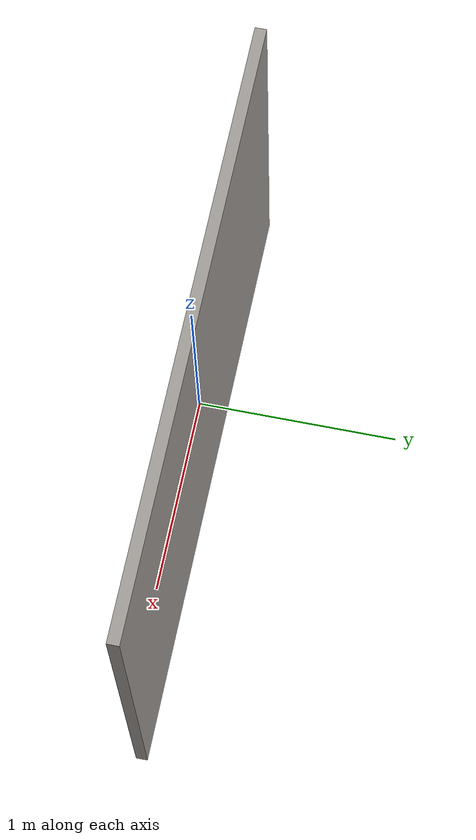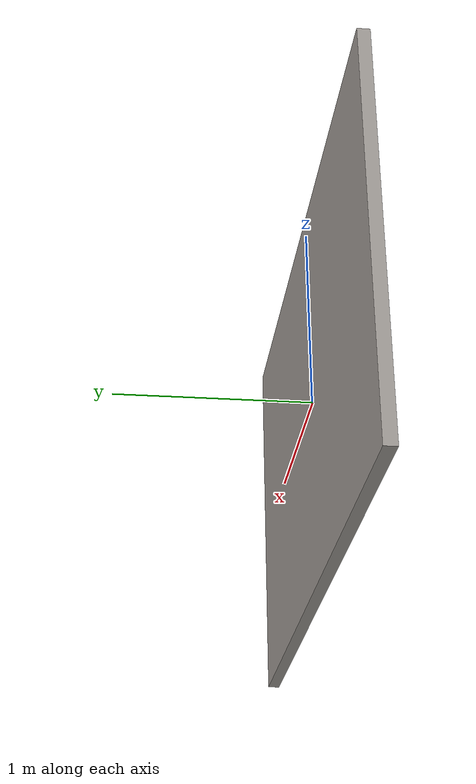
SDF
<?xml version="1.0"?>
<sdf version="1.6">
  <model name="clinic_screen_closed">
    <static>true</static>
    <link name="link">
      <collision name="col">
        <geometry>
          <box>
            <size>3.2 0.06 2.0</size>
          </box>
        </geometry>
      </collision>
      <visual name="vis">
        <geometry>
          <box>
            <size>3.2 0.06 2.0</size>
          </box>
        </geometry>
        <material>
          <ambient>0.62 0.6 0.58 1</ambient>
          <diffuse>0.62 0.6 0.58 1</diffuse>
        </material>
      </visual>
    </link>
  </model>
</sdf>
